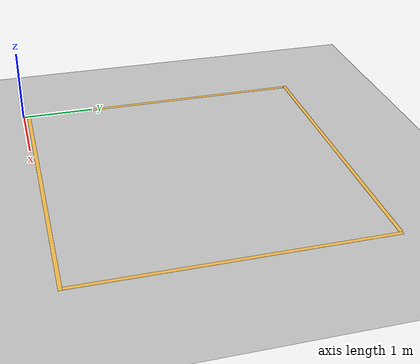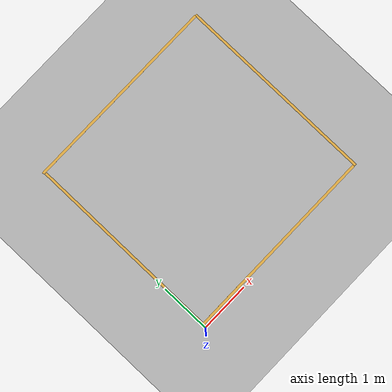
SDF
<sdf version="1.7">
 <world name="default">
  <light name="sun" type="directional">
   <cast_shadows>0</cast_shadows>
   <pose>0 0 10 0 -0 0</pose>
   <diffuse>0.8 0.8 0.8 1</diffuse>
   <specular>0.2 0.2 0.2 1</specular>
   <attenuation>
    <range>1000</range>
    <constant>0.9</constant>
    <linear>0.01</linear>
    <quadratic>0.001</quadratic>
   </attenuation>
   <direction>-0.5 0.1 -0.9</direction>
   <spot><inner_angle>0</inner_angle><outer_angle>0</outer_angle><falloff>0</falloff></spot>
  </light>
  <model name="ground_plane">
   <static>1</static>
   <link name="link">
    <collision name="collision">
     <geometry><plane><normal>0 0 1</normal><size>100 100</size></plane></geometry>
     <surface>
      <contact><collide_bitmask>65535</collide_bitmask></contact>
      <friction><ode><mu>100</mu><mu2>50</mu2></ode></friction>
     </surface>
    </collision>
    <visual name="visual">
     <cast_shadows>0</cast_shadows>
     <geometry><plane><normal>0 0 1</normal><size>100 100</size></plane></geometry>
     <material>
      <script><uri>file://media/materials/scripts/gazebo.material</uri><name>Gazebo/Grey</name></script>
     </material>
    </visual>
   </link>
  </model>
  <gravity>0 0 -9.8</gravity>
  <magnetic_field>6e-06 2.3e-05 -4.2e-05</magnetic_field>
  <atmosphere type="adiabatic"/>
  <physics type="ode">
   <max_step_size>0.001</max_step_size>
   <real_time_factor>1</real_time_factor>
   <real_time_update_rate>1000</real_time_update_rate>
  </physics>
  <scene><ambient>0.4 0.4 0.4 1</ambient><background>0.7 0.7 0.7 1</background><shadows>0</shadows></scene>
  <spherical_coordinates>
   <surface_model>EARTH_WGS84</surface_model>
   <latitude_deg>0</latitude_deg>
   <longitude_deg>0</longitude_deg>
   <elevation>0</elevation>
   <heading_deg>0</heading_deg>
  </spherical_coordinates>
  <model name="sari_cizgi">
   <pose>-1.80093 2.01287 0 0 -0 0</pose>
   <link name="Wall_5">
    <collision name="Wall_5_Collision">
     <geometry><box><size>4 0.05 0.001</size></box></geometry>
     <pose>0 0 0.0005 0 -0 0</pose>
    </collision>
    <visual name="Wall_5_Visual">
     <pose>0 0 0.0005 0 -0 0</pose>
     <geometry><box><size>4 0.05 0.001</size></box></geometry>
     <material>
      <script><uri>file://media/materials/scripts/gazebo.material</uri><name>Gazebo/Grey</name></script>
      <ambient>1 0.764706 0.305882 1</ambient>
     </material>
     <meta><layer>0</layer></meta>
    </visual>
    <pose>1.81727 -8e-05 0 0 -0 -1.5708</pose>
   </link>
   <static>1</static>
  </model>
  <model name="sari_cizgi_clone">
   <pose>2.18052 2.04441 0 0 -0 0</pose>
   <link name="Wall_5">
    <collision name="Wall_5_Collision">
     <geometry><box><size>4 0.05 0.001</size></box></geometry>
     <pose>0 0 0.0005 0 -0 0</pose>
    </collision>
    <visual name="Wall_5_Visual">
     <pose>0 0 0.0005 0 -0 0</pose>
     <geometry><box><size>4 0.05 0.001</size></box></geometry>
     <material>
      <script><uri>file://media/materials/scripts/gazebo.material</uri><name>Gazebo/Grey</name></script>
      <ambient>1 0.764706 0.305882 1</ambient>
     </material>
     <meta><layer>0</layer></meta>
    </visual>
    <pose>1.81727 -8e-05 0 0 -0 -1.5708</pose>
   </link>
   <static>1</static>
  </model>
  <model name="sari_cizgi_clone_0">
   <pose>1.98589 5.85435 0 0 0 -1.57347</pose>
   <link name="Wall_5">
    <collision name="Wall_5_Collision">
     <geometry><box><size>4 0.05 0.001</size></box></geometry>
     <pose>0 0 0.0005 0 -0 0</pose>
    </collision>
    <visual name="Wall_5_Visual">
     <pose>0 0 0.0005 0 -0 0</pose>
     <geometry><box><size>4 0.05 0.001</size></box></geometry>
     <material>
      <script><uri>file://media/materials/scripts/gazebo.material</uri><name>Gazebo/Grey</name></script>
      <ambient>1 0.764706 0.305882 1</ambient>
     </material>
     <meta><layer>0</layer></meta>
    </visual>
    <pose>1.81727 -8e-05 0 0 -0 -1.5708</pose>
   </link>
   <static>1</static>
  </model>
  <model name="sari_cizgi_clone_0_clone">
   <pose>2.02948 1.88233 0 0 0 -1.57347</pose>
   <link name="Wall_5">
    <collision name="Wall_5_Collision">
     <geometry><box><size>4 0.05 0.001</size></box></geometry>
     <pose>0 0 0.0005 0 -0 0</pose>
    </collision>
    <visual name="Wall_5_Visual">
     <pose>0 0 0.0005 0 -0 0</pose>
     <geometry><box><size>4 0.05 0.001</size></box></geometry>
     <material>
      <script><uri>file://media/materials/scripts/gazebo.material</uri><name>Gazebo/Grey</name></script>
      <ambient>1 0.764706 0.305882 1</ambient>
     </material>
     <meta><layer>0</layer></meta>
    </visual>
    <pose>1.81727 -8e-05 0 0 -0 -1.5708</pose>
   </link>
   <static>1</static>
  </model>
 </world>
</sdf>
